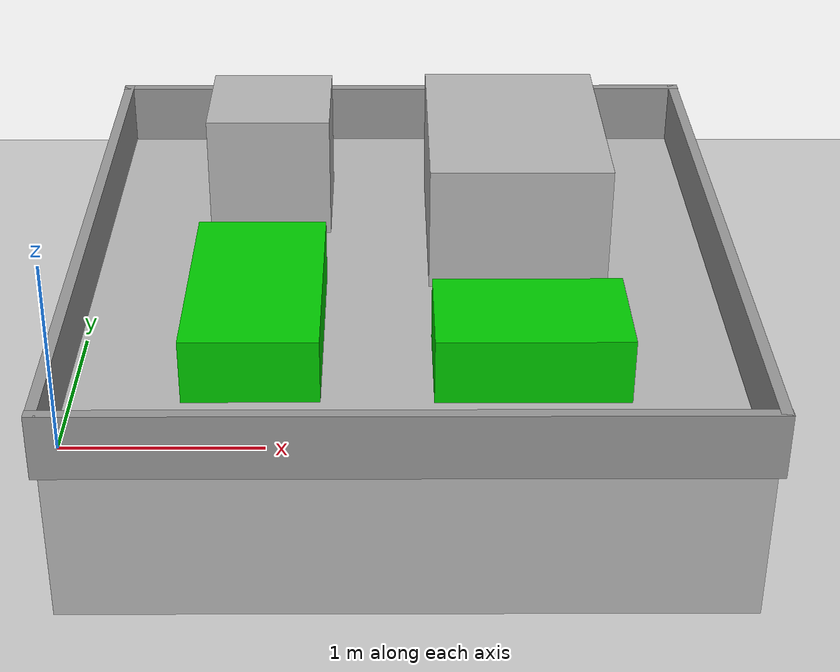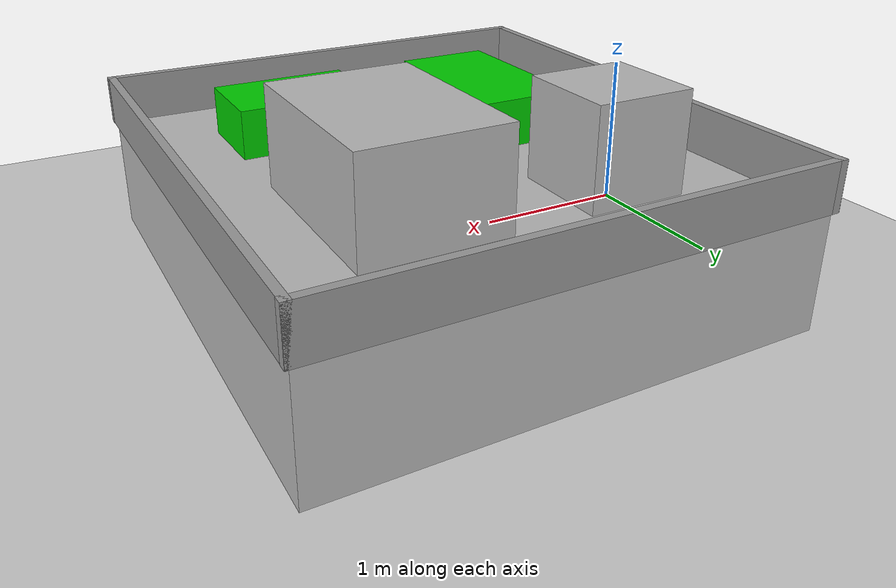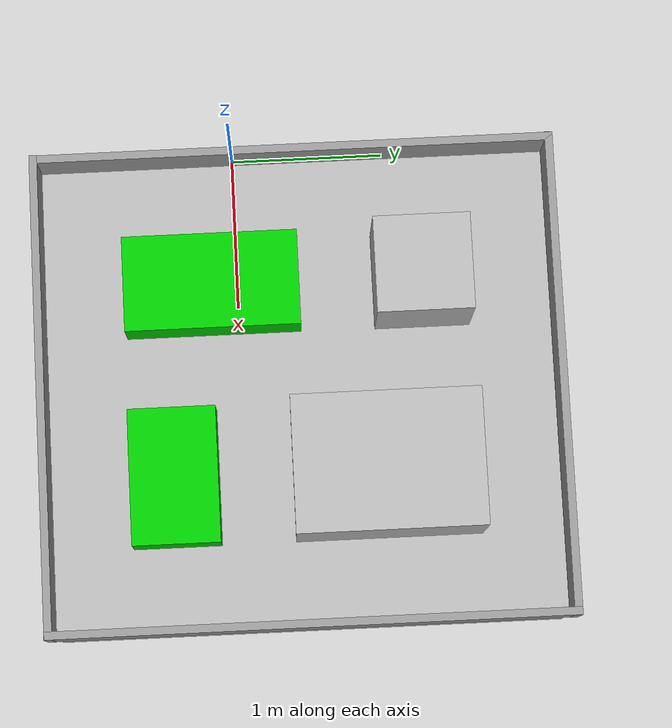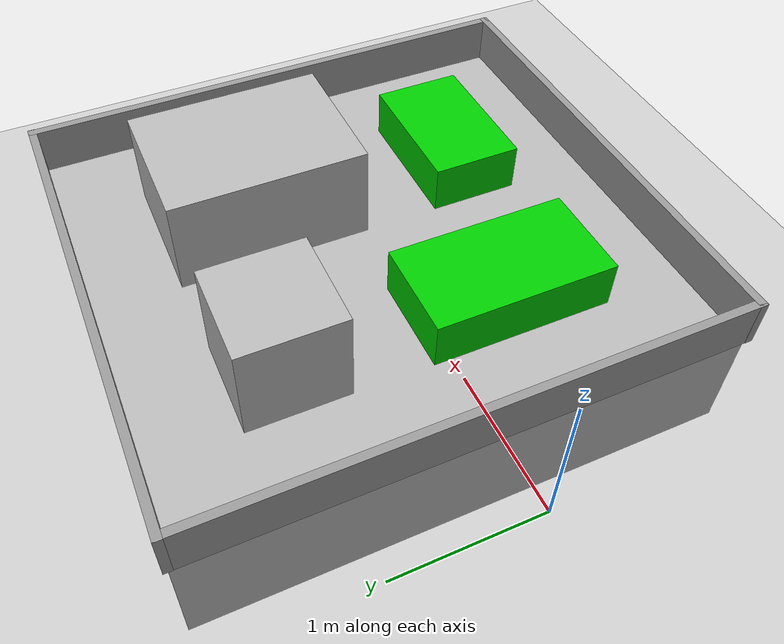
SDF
<sdf version='1.9'>
  <world name='empty'>
    <physics name='1ms' type='ignored'>
      <max_step_size>0.001</max_step_size>
      <real_time_factor>3</real_time_factor>
      <real_time_update_rate>0</real_time_update_rate>
    </physics>
    <plugin name='gz::sim::systems::Physics' filename='gz-sim-physics-system'/>
    <plugin name='gz::sim::systems::UserCommands' filename='gz-sim-user-commands-system'/>
    <plugin name='gz::sim::systems::SceneBroadcaster' filename='gz-sim-scene-broadcaster-system'/>
    <plugin name='gz::sim::systems::Contact' filename='gz-sim-contact-system'/>
    <plugin name='gz::sim::systems::Sensors' filename='gz-sim-sensors-system'>
  <render_engine>ogre2</render_engine>
</plugin>
    <gravity>0 0 -9.8</gravity>
    <magnetic_field>6e-06 2.3e-05 -4.2e-05</magnetic_field>
    <atmosphere type='adiabatic'/>
    <scene>
      <ambient>0.4 0.4 0.4 1</ambient>
      <background>0.7 0.7 0.7 1</background>
      <shadows>true</shadows>
    </scene>
    <model name='ground_plane'>
      <static>true</static>
      <link name='link'>
        <collision name='collision'>
          <geometry>
            <plane>
              <normal>0 0 1</normal>
              <size>100 100</size>
            </plane>
          </geometry>
          <surface>
            <friction>
              <ode/>
            </friction>
            <bounce/>
            <contact/>
          </surface>
        </collision>
        <visual name='visual'>
          <geometry>
            <plane>
              <normal>0 0 1</normal>
              <size>100 100</size>
            </plane>
          </geometry>
          <material>
            <ambient>0.8 0.8 0.8 1</ambient>
            <diffuse>0.8 0.8 0.8 1</diffuse>
            <specular>0.8 0.8 0.8 1</specular>
          </material>
        </visual>
        <pose>0 0 0 0 -0 0</pose>
        <inertial>
          <pose>0 0 0 0 -0 0</pose>
          <mass>1</mass>
          <inertia>
            <ixx>1</ixx>
            <ixy>0</ixy>
            <ixz>0</ixz>
            <iyy>1</iyy>
            <iyz>0</iyz>
            <izz>1</izz>
          </inertia>
        </inertial>
        <enable_wind>false</enable_wind>
      </link>
      <pose>0 0 0 0 -0 0</pose>
      <self_collide>false</self_collide>
    </model>
    <model name='ground_plane_0'>
      <static>true</static>
      <link name='link'>
        <visual name='visual'>
          <geometry>
            <mesh>
              <uri>file:///home/chathupa/fyp_ws/src/jet_auto_simulation/models/Ground_plane/ground_plane.obj</uri>
            </mesh>
          </geometry>
        </visual>
        <collision name='collision'>
          <geometry>
            <mesh>
              <uri>file:///home/chathupa/fyp_ws/src/jet_auto_simulation/models/Ground_plane/ground_plane.obj</uri>
            </mesh>
          </geometry>
        </collision>
        <pose>0 0 0 0 -0 0</pose>
        <inertial>
          <pose>0 0 0 0 -0 0</pose>
          <mass>1</mass>
          <inertia>
            <ixx>1</ixx>
            <ixy>0</ixy>
            <ixz>0</ixz>
            <iyy>1</iyy>
            <iyz>0</iyz>
            <izz>1</izz>
          </inertia>
        </inertial>
        <enable_wind>false</enable_wind>
      </link>
      <pose>1.64603 0.380417 0.356437 1.5708 -0 0</pose>
      <static>false</static>
      <self_collide>false</self_collide>
    </model>
    <model name='Building_A'>
      <static>true</static>
      <link name='link'>
        <visual name='visual'>
          <geometry>
            <mesh>
              <uri>file:///home/chathupa/fyp_ws/src/jet_auto_simulation/models/Building_A/Building_A.obj</uri>
            </mesh>
          </geometry>
        </visual>
        <collision name='collision'>
          <geometry>
            <mesh>
              <uri>file:///home/chathupa/fyp_ws/src/jet_auto_simulation/models/Building_A/Building_A.obj</uri>
            </mesh>
          </geometry>
        </collision>
        <pose>0 0 0 0 -0 0</pose>
        <inertial>
          <pose>0 0 0 0 -0 0</pose>
          <mass>1</mass>
          <inertia>
            <ixx>1</ixx>
            <ixy>0</ixy>
            <ixz>0</ixz>
            <iyy>1</iyy>
            <iyz>0</iyz>
            <izz>1</izz>
          </inertia>
        </inertial>
        <enable_wind>false</enable_wind>
      </link>
      <pose>2.19479 0.902287 1.01666 1.5708 -0 -1.57086</pose>
      <static>false</static>
      <self_collide>false</self_collide>
    </model>
    <model name='Building_B'>
      <static>true</static>
      <link name='link'>
        <visual name='visual'>
          <geometry>
            <mesh>
              <uri>file:///home/chathupa/fyp_ws/src/jet_auto_simulation/models/Building_B/Building_B.obj</uri>
            </mesh>
          </geometry>
        </visual>
        <collision name='collision'>
          <geometry>
            <mesh>
              <uri>file:///home/chathupa/fyp_ws/src/jet_auto_simulation/models/Building_B/Building_B.obj</uri>
            </mesh>
          </geometry>
        </collision>
        <pose>0 0 0 0 -0 0</pose>
        <inertial>
          <pose>0 0 0 0 -0 0</pose>
          <mass>1</mass>
          <inertia>
            <ixx>1</ixx>
            <ixy>0</ixy>
            <ixz>0</ixz>
            <iyy>1</iyy>
            <iyz>0</iyz>
            <izz>1</izz>
          </inertia>
        </inertial>
        <enable_wind>false</enable_wind>
      </link>
      <pose>1.00082 1.16951 1.01502 1.5708 -0 0</pose>
      <static>false</static>
      <self_collide>false</self_collide>
    </model>
    <model name='wall_north'>
      <static>true</static>
      <link name='link'>
        <collision name='collision'>
          <geometry>
            <box>
              <size>3.04 0.05 0.3</size>
            </box>
          </geometry>
          <surface>
            <friction>
              <ode/>
            </friction>
            <bounce/>
            <contact/>
          </surface>
        </collision>
        <visual name='visual'>
          <geometry>
            <box>
              <size>3.04 0.05 0.3</size>
            </box>
          </geometry>
          <material>
            <ambient>0.6 0.6 0.6 1</ambient>
            <diffuse>0.6 0.6 0.6 1</diffuse>
          </material>
        </visual>
        <pose>0 0 0 0 -0 0</pose>
        <inertial>
          <pose>0 0 0 0 -0 0</pose>
          <mass>1</mass>
          <inertia>
            <ixx>1</ixx>
            <ixy>0</ixy>
            <ixz>0</ixz>
            <iyy>1</iyy>
            <iyz>0</iyz>
            <izz>1</izz>
          </inertia>
        </inertial>
        <enable_wind>false</enable_wind>
      </link>
      <pose>1.668 2.019 0.865 0 -0 0</pose>
      <self_collide>false</self_collide>
    </model>
    <model name='wall_south'>
      <static>true</static>
      <link name='link'>
        <collision name='collision'>
          <geometry>
            <box>
              <size>3.04 0.05 0.3</size>
            </box>
          </geometry>
          <surface>
            <friction>
              <ode/>
            </friction>
            <bounce/>
            <contact/>
          </surface>
        </collision>
        <visual name='visual'>
          <geometry>
            <box>
              <size>3.04 0.05 0.3</size>
            </box>
          </geometry>
          <material>
            <ambient>0.6 0.6 0.6 1</ambient>
            <diffuse>0.6 0.6 0.6 1</diffuse>
          </material>
        </visual>
        <pose>0 0 0 0 -0 0</pose>
        <inertial>
          <pose>0 0 0 0 -0 0</pose>
          <mass>1</mass>
          <inertia>
            <ixx>1</ixx>
            <ixy>0</ixy>
            <ixz>0</ixz>
            <iyy>1</iyy>
            <iyz>0</iyz>
            <izz>1</izz>
          </inertia>
        </inertial>
        <enable_wind>false</enable_wind>
      </link>
      <pose>1.668 -1.232 0.865 0 -0 0</pose>
      <self_collide>false</self_collide>
    </model>
    <model name='wall_east'>
      <static>true</static>
      <link name='link'>
        <collision name='collision'>
          <geometry>
            <box>
              <size>3.3 0.05 0.3</size>
            </box>
          </geometry>
          <surface>
            <friction>
              <ode/>
            </friction>
            <bounce/>
            <contact/>
          </surface>
        </collision>
        <visual name='visual'>
          <geometry>
            <box>
              <size>3.3 0.05 0.3</size>
            </box>
          </geometry>
          <material>
            <ambient>0.6 0.6 0.6 1</ambient>
            <diffuse>0.6 0.6 0.6 1</diffuse>
          </material>
        </visual>
        <pose>0 0 0 0 -0 0</pose>
        <inertial>
          <pose>0 0 0 0 -0 0</pose>
          <mass>1</mass>
          <inertia>
            <ixx>1</ixx>
            <ixy>0</ixy>
            <ixz>0</ixz>
            <iyy>1</iyy>
            <iyz>0</iyz>
            <izz>1</izz>
          </inertia>
        </inertial>
        <enable_wind>false</enable_wind>
      </link>
      <pose>3.161 0.394 0.865 0 -0 1.5708</pose>
      <self_collide>false</self_collide>
    </model>
    <model name='wall_west'>
      <static>true</static>
      <link name='link'>
        <collision name='collision'>
          <geometry>
            <box>
              <size>3.3 0.05 0.3</size>
            </box>
          </geometry>
          <surface>
            <friction>
              <ode/>
            </friction>
            <bounce/>
            <contact/>
          </surface>
        </collision>
        <visual name='visual'>
          <geometry>
            <box>
              <size>3.3 0.05 0.3</size>
            </box>
          </geometry>
          <material>
            <ambient>0.6 0.6 0.6 1</ambient>
            <diffuse>0.6 0.6 0.6 1</diffuse>
          </material>
        </visual>
        <pose>0 0 0 0 -0 0</pose>
        <inertial>
          <pose>0 0 0 0 -0 0</pose>
          <mass>1</mass>
          <inertia>
            <ixx>1</ixx>
            <ixy>0</ixy>
            <ixz>0</ixz>
            <iyy>1</iyy>
            <iyz>0</iyz>
            <izz>1</izz>
          </inertia>
        </inertial>
        <enable_wind>false</enable_wind>
      </link>
      <pose>0.175 0.394 0.865 0 -0 1.5708</pose>
      <self_collide>false</self_collide>
    </model>
    <model name='obstacle_box_1'>
      <static>true</static>
      <link name='link'>
        <collision name='collision'>
          <geometry>
            <box>
              <size>0.6 1.1 0.4</size>
            </box>
          </geometry>
          <surface>
            <friction>
              <ode/>
            </friction>
            <bounce/>
            <contact/>
          </surface>
        </collision>
        <visual name='visual'>
          <geometry>
            <box>
              <size>0.6 1.1 0.4</size>
            </box>
          </geometry>
          <material>
            <ambient>0 0.8 0 1</ambient>
            <diffuse>0 0.8 0 1</diffuse>
          </material>
        </visual>
        <pose>0 0 0 0 -0 0</pose>
        <inertial>
          <pose>0 0 0 0 -0 0</pose>
          <mass>1</mass>
          <inertia>
            <ixx>1</ixx>
            <ixy>0</ixy>
            <ixz>0</ixz>
            <iyy>1</iyy>
            <iyz>0</iyz>
            <izz>1</izz>
          </inertia>
        </inertial>
        <enable_wind>false</enable_wind>
      </link>
      <pose>0.999021 -0.144534 0.815 0 -0 0</pose>
      <self_collide>false</self_collide>
    </model>
    <model name='obstacle_box_2'>
      <static>true</static>
      <link name='link'>
        <collision name='collision'>
          <geometry>
            <box>
              <size>0.85 0.55 0.4</size>
            </box>
          </geometry>
          <surface>
            <friction>
              <ode/>
            </friction>
            <bounce/>
            <contact/>
          </surface>
        </collision>
        <visual name='visual'>
          <geometry>
            <box>
              <size>0.85 0.55 0.4</size>
            </box>
          </geometry>
          <material>
            <ambient>0 0.8 0 1</ambient>
            <diffuse>0 0.8 0 1</diffuse>
          </material>
        </visual>
        <pose>0 0 0 0 -0 0</pose>
        <inertial>
          <pose>0 0 0 0 -0 0</pose>
          <mass>1</mass>
          <inertia>
            <ixx>1</ixx>
            <ixy>0</ixy>
            <ixz>0</ixz>
            <iyy>1</iyy>
            <iyz>0</iyz>
            <izz>1</izz>
          </inertia>
        </inertial>
        <enable_wind>false</enable_wind>
      </link>
      <pose>2.21225 -0.424662 0.816305 0 -0 0</pose>
      <self_collide>false</self_collide>
    </model>
    <light name='sun' type='directional'>
      <pose>0 0 10 0 -0 0</pose>
      <cast_shadows>true</cast_shadows>
      <intensity>1</intensity>
      <direction>-0.5 0.1 -0.9</direction>
      <diffuse>0.8 0.8 0.8 1</diffuse>
      <specular>0.2 0.2 0.2 1</specular>
      <attenuation>
        <range>1000</range>
        <linear>0.01</linear>
        <constant>0.90000000000000002</constant>
        <quadratic>0.001</quadratic>
      </attenuation>
      <spot>
        <inner_angle>0</inner_angle>
        <outer_angle>0</outer_angle>
        <falloff>0</falloff>
      </spot>
    </light>
  </world>
</sdf>
